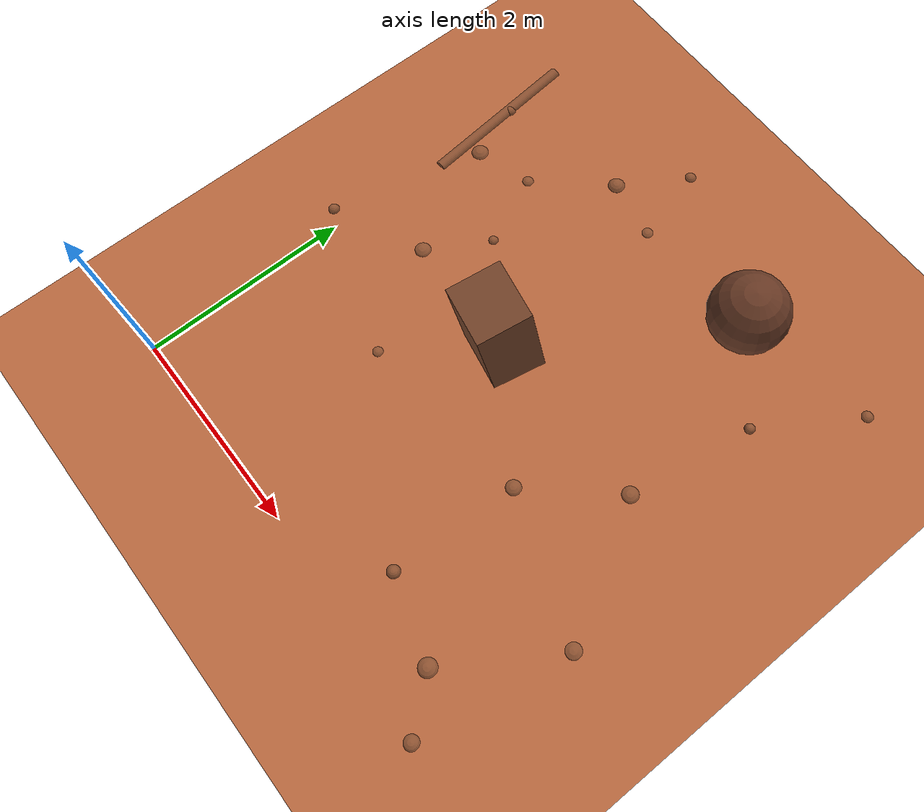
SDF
<sdf version="1.8">
 <world name="rover_world">
  <model name="ground_plane">
   <static>true</static>
   <link name="link">
    <collision name="collision">
     <geometry><plane><normal>0 0 1</normal><size>60 60</size></plane></geometry>
    </collision>
    <visual name="visual">
     <geometry><plane><normal>0 0 1</normal><size>60 60</size></plane></geometry>
     <material><ambient>0.71 0.40 0.24 1</ambient><diffuse>0.71 0.40 0.24 1</diffuse></material>
    </visual>
   </link>
  </model>
  <model name="crater_8">
   <static>true</static>
   <pose>3.157 4.372 0.213 0 0 0</pose>
   <link name="link">
    <collision name="collision"><geometry><sphere><radius>0.388</radius></sphere></geometry></collision>
    <visual name="visual">
     <geometry><sphere><radius>0.388</radius></sphere></geometry>
     <material><ambient>0.40 0.22 0.14 1</ambient><diffuse>0.40 0.22 0.14 1</diffuse></material>
    </visual>
   </link>
  </model>
  <model name="rock_b7">
   <static>true</static>
   <pose>1.963 2.447 0.396 -0.053 -0.115 1.386</pose>
   <link name="link">
    <collision name="collision"><geometry><box><size>0.515 0.584 1.205</size></box></geometry></collision>
    <visual name="visual">
     <geometry><box><size>0.515 0.584 1.205</size></box></geometry>
     <material><ambient>0.45 0.26 0.16 1</ambient><diffuse>0.45 0.26 0.16 1</diffuse></material>
    </visual>
   </link>
  </model>
  <model name="bump_6">
   <static>true</static>
   <pose>3.790 0.261 -0.086 0 0 0</pose>
   <link name="link">
    <collision name="collision"><geometry><sphere><radius>0.118</radius></sphere></geometry></collision>
    <visual name="visual">
     <geometry><sphere><radius>0.118</radius></sphere></geometry>
     <material><ambient>0.55 0.32 0.19 1</ambient><diffuse>0.55 0.32 0.19 1</diffuse></material>
    </visual>
   </link>
  </model>
  <model name="bump_53">
   <static>true</static>
   <pose>4.429 1.268 -0.093 0 0 0</pose>
   <link name="link">
    <collision name="collision"><geometry><sphere><radius>0.115</radius></sphere></geometry></collision>
    <visual name="visual">
     <geometry><sphere><radius>0.115</radius></sphere></geometry>
     <material><ambient>0.55 0.32 0.19 1</ambient><diffuse>0.55 0.32 0.19 1</diffuse></material>
    </visual>
   </link>
  </model>
  <model name="bump_76">
   <static>true</static>
   <pose>4.167 -0.182 -0.068 0 0 0</pose>
   <link name="link">
    <collision name="collision"><geometry><sphere><radius>0.093</radius></sphere></geometry></collision>
    <visual name="visual">
     <geometry><sphere><radius>0.093</radius></sphere></geometry>
     <material><ambient>0.55 0.32 0.19 1</ambient><diffuse>0.55 0.32 0.19 1</diffuse></material>
    </visual>
   </link>
  </model>
  <model name="bump_83">
   <static>true</static>
   <pose>-0.178 2.115 -0.027 0 0 0</pose>
   <link name="link">
    <collision name="collision"><geometry><sphere><radius>0.059</radius></sphere></geometry></collision>
    <visual name="visual">
     <geometry><sphere><radius>0.059</radius></sphere></geometry>
     <material><ambient>0.55 0.32 0.19 1</ambient><diffuse>0.55 0.32 0.19 1</diffuse></material>
    </visual>
   </link>
  </model>
  <model name="bump_103">
   <static>true</static>
   <pose>1.706 5.032 -0.038 0 0 0</pose>
   <link name="link">
    <collision name="collision"><geometry><sphere><radius>0.063</radius></sphere></geometry></collision>
    <visual name="visual">
     <geometry><sphere><radius>0.063</radius></sphere></geometry>
     <material><ambient>0.55 0.32 0.19 1</ambient><diffuse>0.55 0.32 0.19 1</diffuse></material>
    </visual>
   </link>
  </model>
  <model name="bump_113">
   <static>true</static>
   <pose>2.991 0.504 -0.028 0 0 0</pose>
   <link name="link">
    <collision name="collision"><geometry><sphere><radius>0.066</radius></sphere></geometry></collision>
    <visual name="visual">
     <geometry><sphere><radius>0.066</radius></sphere></geometry>
     <material><ambient>0.55 0.32 0.19 1</ambient><diffuse>0.55 0.32 0.19 1</diffuse></material>
    </visual>
   </link>
  </model>
  <model name="bump_147">
   <static>true</static>
   <pose>3.732 2.488 -0.082 0 0 0</pose>
   <link name="link">
    <collision name="collision"><geometry><sphere><radius>0.110</radius></sphere></geometry></collision>
    <visual name="visual">
     <geometry><sphere><radius>0.110</radius></sphere></geometry>
     <material><ambient>0.55 0.32 0.19 1</ambient><diffuse>0.55 0.32 0.19 1</diffuse></material>
    </visual>
   </link>
  </model>
  <model name="bump_155">
   <static>true</static>
   <pose>0.712 2.518 -0.083 0 0 0</pose>
   <link name="link">
    <collision name="collision"><geometry><sphere><radius>0.110</radius></sphere></geometry></collision>
    <visual name="visual">
     <geometry><sphere><radius>0.110</radius></sphere></geometry>
     <material><ambient>0.55 0.32 0.19 1</ambient><diffuse>0.55 0.32 0.19 1</diffuse></material>
    </visual>
   </link>
  </model>
  <model name="bump_197">
   <static>true</static>
   <pose>3.054 1.741 -0.075 0 0 0</pose>
   <link name="link">
    <collision name="collision"><geometry><sphere><radius>0.101</radius></sphere></geometry></collision>
    <visual name="visual">
     <geometry><sphere><radius>0.101</radius></sphere></geometry>
     <material><ambient>0.55 0.32 0.19 1</ambient><diffuse>0.55 0.32 0.19 1</diffuse></material>
    </visual>
   </link>
  </model>
  <model name="bump_199">
   <static>true</static>
   <pose>0.749 3.767 -0.059 0 0 0</pose>
   <link name="link">
    <collision name="collision"><geometry><sphere><radius>0.076</radius></sphere></geometry></collision>
    <visual name="visual">
     <geometry><sphere><radius>0.076</radius></sphere></geometry>
     <material><ambient>0.55 0.32 0.19 1</ambient><diffuse>0.55 0.32 0.19 1</diffuse></material>
    </visual>
   </link>
  </model>
  <model name="bump_200">
   <static>true</static>
   <pose>1.324 4.409 -0.060 0 0 0</pose>
   <link name="link">
    <collision name="collision"><geometry><sphere><radius>0.098</radius></sphere></geometry></collision>
    <visual name="visual">
     <geometry><sphere><radius>0.098</radius></sphere></geometry>
     <material><ambient>0.55 0.32 0.19 1</ambient><diffuse>0.55 0.32 0.19 1</diffuse></material>
    </visual>
   </link>
  </model>
  <model name="bump_203">
   <static>true</static>
   <pose>1.049 3.102 -0.028 0 0 0</pose>
   <link name="link">
    <collision name="collision"><geometry><sphere><radius>0.052</radius></sphere></geometry></collision>
    <visual name="visual">
     <geometry><sphere><radius>0.052</radius></sphere></geometry>
     <material><ambient>0.55 0.32 0.19 1</ambient><diffuse>0.55 0.32 0.19 1</diffuse></material>
    </visual>
   </link>
  </model>
  <model name="bump_211">
   <static>true</static>
   <pose>3.940 3.703 -0.012 0 0 0</pose>
   <link name="link">
    <collision name="collision"><geometry><sphere><radius>0.051</radius></sphere></geometry></collision>
    <visual name="visual">
     <geometry><sphere><radius>0.051</radius></sphere></geometry>
     <material><ambient>0.55 0.32 0.19 1</ambient><diffuse>0.55 0.32 0.19 1</diffuse></material>
    </visual>
   </link>
  </model>
  <model name="bump_213">
   <static>true</static>
   <pose>1.904 4.299 -0.065 0 0 0</pose>
   <link name="link">
    <collision name="collision"><geometry><sphere><radius>0.080</radius></sphere></geometry></collision>
    <visual name="visual">
     <geometry><sphere><radius>0.080</radius></sphere></geometry>
     <material><ambient>0.55 0.32 0.19 1</ambient><diffuse>0.55 0.32 0.19 1</diffuse></material>
    </visual>
   </link>
  </model>
  <model name="bump_218">
   <static>true</static>
   <pose>1.292 1.572 -0.053 0 0 0</pose>
   <link name="link">
    <collision name="collision"><geometry><sphere><radius>0.069</radius></sphere></geometry></collision>
    <visual name="visual">
     <geometry><sphere><radius>0.069</radius></sphere></geometry>
     <material><ambient>0.55 0.32 0.19 1</ambient><diffuse>0.55 0.32 0.19 1</diffuse></material>
    </visual>
   </link>
  </model>
  <model name="bump_222">
   <static>true</static>
   <pose>4.511 4.596 -0.043 0 0 0</pose>
   <link name="link">
    <collision name="collision"><geometry><sphere><radius>0.067</radius></sphere></geometry></collision>
    <visual name="visual">
     <geometry><sphere><radius>0.067</radius></sphere></geometry>
     <material><ambient>0.55 0.32 0.19 1</ambient><diffuse>0.55 0.32 0.19 1</diffuse></material>
    </visual>
   </link>
  </model>
  <model name="bump_233">
   <static>true</static>
   <pose>0.198 3.606 -0.084 0 0 0</pose>
   <link name="link">
    <collision name="collision"><geometry><sphere><radius>0.114</radius></sphere></geometry></collision>
    <visual name="visual">
     <geometry><sphere><radius>0.114</radius></sphere></geometry>
     <material><ambient>0.55 0.32 0.19 1</ambient><diffuse>0.55 0.32 0.19 1</diffuse></material>
    </visual>
   </link>
  </model>
  <model name="bump_246">
   <static>true</static>
   <pose>0.000 4.142 -0.024 0 0 0</pose>
   <link name="link">
    <collision name="collision"><geometry><sphere><radius>0.060</radius></sphere></geometry></collision>
    <visual name="visual">
     <geometry><sphere><radius>0.060</radius></sphere></geometry>
     <material><ambient>0.55 0.32 0.19 1</ambient><diffuse>0.55 0.32 0.19 1</diffuse></material>
    </visual>
   </link>
  </model>
  <model name="log_4">
   <static>true</static>
   <pose>0.000 4.000 -0.030 1.5708 0 0.100</pose>
   <link name="link">
    <collision name="collision">
     <geometry><cylinder><radius>0.060</radius><length>1.600</length></cylinder></geometry>
    </collision>
    <visual name="visual">
     <geometry><cylinder><radius>0.060</radius><length>1.600</length></cylinder></geometry>
     <material><ambient>0.55 0.32 0.19 1</ambient><diffuse>0.55 0.32 0.19 1</diffuse></material>
    </visual>
   </link>
  </model>
 </world>
</sdf>
